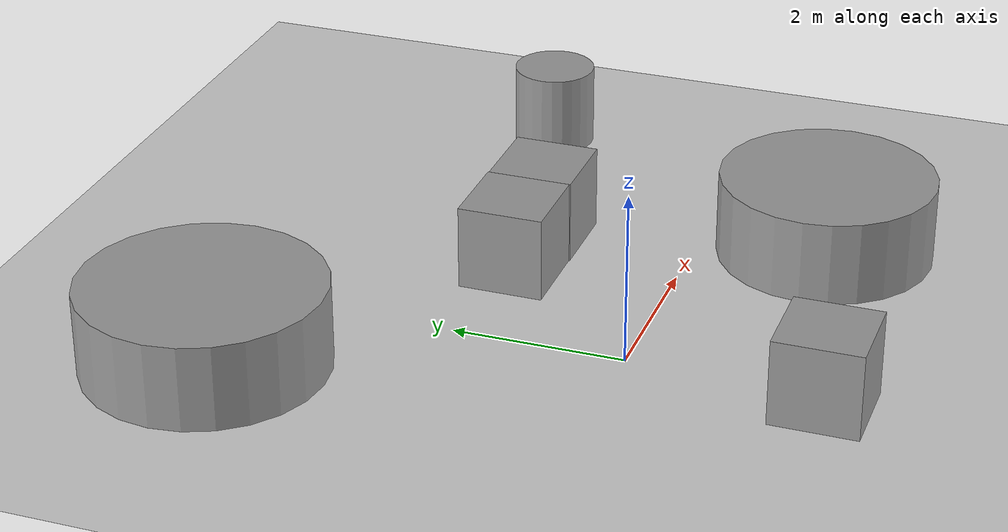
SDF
<sdf version="1.7">
 <world name="default">
  <light name="sun" type="directional">
   <pose>0 0 10 0 -0 0</pose>
   <diffuse>0.8 0.8 0.8 1</diffuse>
   <specular>0.2 0.2 0.2 1</specular>
   <attenuation>
    <range>1000</range>
    <constant>0.9</constant>
    <linear>0.01</linear>
    <quadratic>0.001</quadratic>
   </attenuation>
   <direction>-0.5 0.1 -0.9</direction>
   <spot><inner_angle>0</inner_angle><outer_angle>0</outer_angle><falloff>0</falloff></spot>
  </light>
  <model name="ground_plane">
   <static>1</static>
   <link name="link">
    <collision name="collision">
     <geometry><plane><normal>0 0 1</normal><size>100 100</size></plane></geometry>
     <surface>
      <contact><collide_bitmask>65535</collide_bitmask></contact>
      <friction><ode><mu>100</mu><mu2>50</mu2></ode></friction>
     </surface>
    </collision>
    <visual name="visual">
     <cast_shadows>0</cast_shadows>
     <geometry><plane><normal>0 0 1</normal><size>100 100</size></plane></geometry>
     <material>
      <script><uri>file://media/materials/scripts/gazebo.material</uri><name>Gazebo/Grey</name></script>
     </material>
    </visual>
   </link>
  </model>
  <gravity>0 0 -9.8</gravity>
  <magnetic_field>6e-06 2.3e-05 -4.2e-05</magnetic_field>
  <atmosphere type="adiabatic"/>
  <physics type="ode">
   <max_step_size>0.001</max_step_size>
   <real_time_factor>1</real_time_factor>
   <real_time_update_rate>1000</real_time_update_rate>
  </physics>
  <scene><ambient>0.4 0.4 0.4 1</ambient><background>0.7 0.7 0.7 1</background><shadows>1</shadows></scene>
  <spherical_coordinates>
   <surface_model>EARTH_WGS84</surface_model>
   <latitude_deg>0</latitude_deg>
   <longitude_deg>0</longitude_deg>
   <elevation>0</elevation>
   <heading_deg>0</heading_deg>
  </spherical_coordinates>
  <model name="unit_box">
   <pose>1.47784 1.80823 0.499995 0 -1e-05 -0.000172</pose>
   <link name="link">
    <inertial>
     <mass>1</mass>
     <inertia>
      <ixx>0.166667</ixx>
      <ixy>0</ixy>
      <ixz>0</ixz>
      <iyy>0.166667</iyy>
      <iyz>0</iyz>
      <izz>0.166667</izz>
     </inertia>
    </inertial>
    <collision name="collision"><geometry><box><size>1 1 1</size></box></geometry></collision>
    <visual name="visual">
     <geometry><box><size>1 1 1</size></box></geometry>
     <material>
      <script><name>Gazebo/Grey</name><uri>file://media/materials/scripts/gazebo.material</uri></script>
     </material>
    </visual>
   </link>
  </model>
  <model name="unit_cylinder">
   <pose>3.19678 -1.46153 0.49999 7e-06 7e-06 -1.6e-05</pose>
   <link name="link">
    <inertial>
     <mass>1</mass>
     <inertia><ixx>0.145833</ixx><ixy>0</ixy><ixz>0</ixz><iyy>0.145833</iyy><iyz>0</iyz><izz>0.125</izz></inertia>
    </inertial>
    <collision name="collision">
     <geometry><cylinder><radius>1.27539</radius><length>1</length></cylinder></geometry>
    </collision>
    <visual name="visual">
     <geometry><cylinder><radius>1.27539</radius><length>1</length></cylinder></geometry>
     <material>
      <script><name>Gazebo/Grey</name><uri>file://media/materials/scripts/gazebo.material</uri></script>
     </material>
    </visual>
   </link>
  </model>
  <model name="unit_box_0">
   <pose>-0.24397 -2.26469 0.5 0 -0 0</pose>
   <link name="link">
    <inertial>
     <mass>1</mass>
     <inertia>
      <ixx>0.166667</ixx>
      <ixy>0</ixy>
      <ixz>0</ixz>
      <iyy>0.166667</iyy>
      <iyz>0</iyz>
      <izz>0.166667</izz>
     </inertia>
    </inertial>
    <collision name="collision"><geometry><box><size>1 1 1</size></box></geometry></collision>
    <visual name="visual">
     <geometry><box><size>1 1 1</size></box></geometry>
     <material>
      <script><name>Gazebo/Grey</name><uri>file://media/materials/scripts/gazebo.material</uri></script>
     </material>
    </visual>
   </link>
  </model>
  <model name="unit_box_1">
   <pose>2.47785 1.79651 0.499995 -0 1e-05 -0.000176</pose>
   <link name="link">
    <inertial>
     <mass>1</mass>
     <inertia>
      <ixx>0.166667</ixx>
      <ixy>0</ixy>
      <ixz>0</ixz>
      <iyy>0.166667</iyy>
      <iyz>0</iyz>
      <izz>0.166667</izz>
     </inertia>
    </inertial>
    <collision name="collision"><geometry><box><size>1 1 1</size></box></geometry></collision>
    <visual name="visual">
     <geometry><box><size>1 1 1</size></box></geometry>
     <material>
      <script><name>Gazebo/Grey</name><uri>file://media/materials/scripts/gazebo.material</uri></script>
     </material>
    </visual>
   </link>
  </model>
  <model name="unit_cylinder_0">
   <pose>-1.56123 4.28047 0.499989 7e-06 7e-06 -2.7e-05</pose>
   <link name="link">
    <inertial>
     <mass>1</mass>
     <inertia><ixx>0.145833</ixx><ixy>0</ixy><ixz>0</ixz><iyy>0.145833</iyy><iyz>0</iyz><izz>0.125</izz></inertia>
    </inertial>
    <collision name="collision">
     <geometry><cylinder><radius>1.39393</radius><length>1</length></cylinder></geometry>
    </collision>
    <visual name="visual">
     <geometry><cylinder><radius>1.39393</radius><length>1</length></cylinder></geometry>
     <material>
      <script><name>Gazebo/Grey</name><uri>file://media/materials/scripts/gazebo.material</uri></script>
     </material>
    </visual>
   </link>
  </model>
  <model name="unit_cylinder_1">
   <pose>5.10886 2.54859 0.499997 3e-06 4e-06 -0</pose>
   <link name="link">
    <inertial>
     <mass>1</mass>
     <inertia><ixx>0.145833</ixx><ixy>0</ixy><ixz>0</ixz><iyy>0.145833</iyy><iyz>0</iyz><izz>0.125</izz></inertia>
    </inertial>
    <collision name="collision">
     <geometry><cylinder><radius>0.5</radius><length>1</length></cylinder></geometry>
    </collision>
    <visual name="visual">
     <geometry><cylinder><radius>0.5</radius><length>1</length></cylinder></geometry>
     <material>
      <script><name>Gazebo/Grey</name><uri>file://media/materials/scripts/gazebo.material</uri></script>
     </material>
    </visual>
   </link>
  </model>
 </world>
</sdf>
